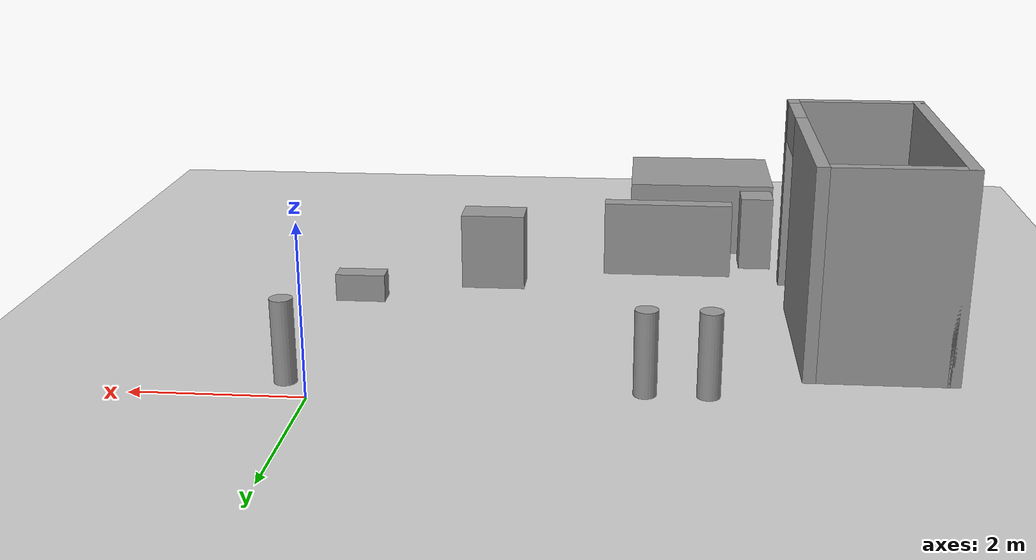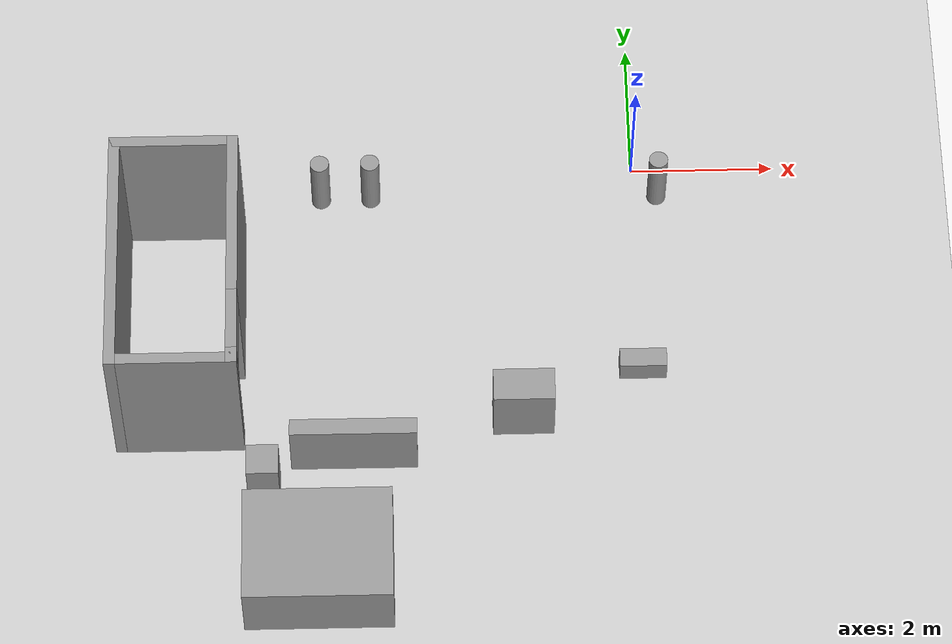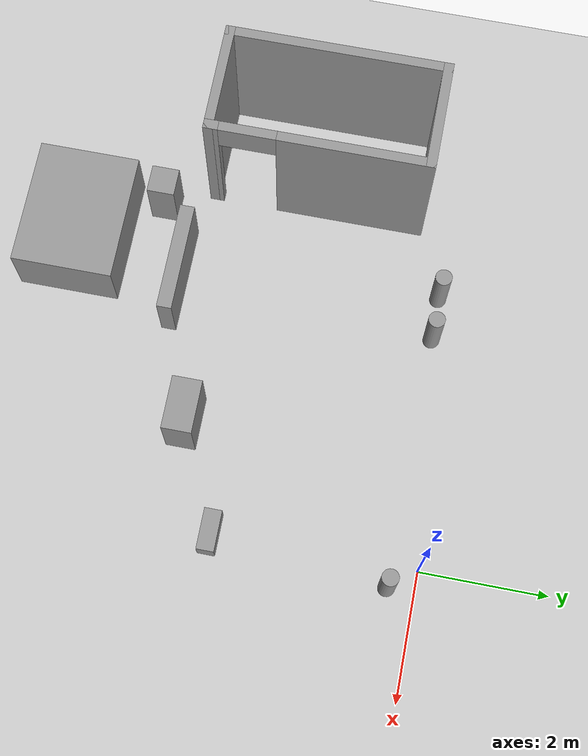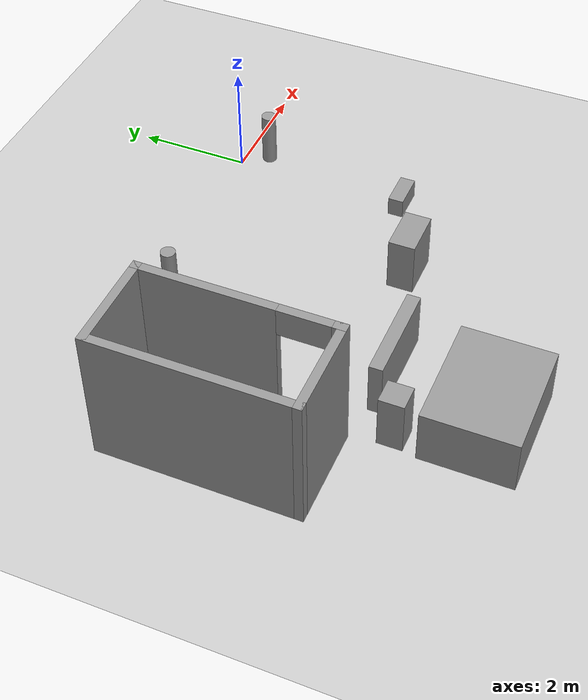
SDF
<sdf version="1.9">
 <world name="default">
  <model name="ground_plane">
   <static>true</static>
   <link name="link">
    <collision name="collision">
     <geometry><plane><normal>0 0 1</normal><size>100 100</size></plane></geometry>
     <surface><friction><ode><mu>100</mu><mu2>50</mu2></ode></friction></surface>
    </collision>
    <visual name="visual">
     <cast_shadows>false</cast_shadows>
     <geometry><plane><normal>0 0 1</normal><size>100 100</size></plane></geometry>
     <material>
      <script><uri>file://media/materials/scripts/gazebo.material</uri><name>Gazebo/Grey</name></script>
     </material>
    </visual>
   </link>
  </model>
  <model name="cma_varanda1">
   <pose>-6.3251799999999996 -2.5931299999999999 0 0 0 0</pose>
   <link name="Wall_0">
    <pose>0.80000000000000004 0 0 0 0 -1.5708</pose>
    <visual name="Wall_0_Visual_0">
     <pose>-0.55249999999999999 0 1.25 0 0 0</pose>
     <geometry><box><size>2.395 0.14999999999999999 2.5</size></box></geometry>
     <material>
      <script><uri>file://media/materials/scripts/gazebo.material</uri><name>Gazebo/Grey</name></script>
      <ambient>1 1 1 1</ambient>
     </material>
    </visual>
    <collision name="Wall_0_Collision_0">
     <geometry><box><size>2.395 0.14999999999999999 2.5</size></box></geometry>
     <pose>-0.55249999999999999 0 1.25 0 0 0</pose>
    </collision>
    <visual name="Wall_0_Visual_1">
     <pose>1.6375 0 1.25 0 0 0</pose>
     <geometry><box><size>0.22500000000000001 0.14999999999999999 2.5</size></box></geometry>
     <material>
      <script><uri>file://media/materials/scripts/gazebo.material</uri><name>Gazebo/Grey</name></script>
      <ambient>1 1 1 1</ambient>
     </material>
    </visual>
    <collision name="Wall_0_Collision_1">
     <geometry><box><size>0.22500000000000001 0.14999999999999999 2.5</size></box></geometry>
     <pose>1.6375 0 1.25 0 0 0</pose>
    </collision>
    <visual name="Wall_0_Visual_2">
     <pose>1.085 0 2.25 0 0 0</pose>
     <geometry><box><size>0.88 0.14999999999999999 0.5</size></box></geometry>
     <material>
      <script><uri>file://media/materials/scripts/gazebo.material</uri><name>Gazebo/Grey</name></script>
      <ambient>1 1 1 1</ambient>
     </material>
    </visual>
    <collision name="Wall_0_Collision_2">
     <geometry><box><size>0.88 0.14999999999999999 0.5</size></box></geometry>
     <pose>1.085 0 2.25 0 0 0</pose>
    </collision>
   </link>
   <link name="Wall_1">
    <collision name="Wall_1_Collision">
     <geometry><box><size>1.75 0.14999999999999999 2.5</size></box></geometry>
     <pose>0 0 1.25 0 0 0</pose>
    </collision>
    <visual name="Wall_1_Visual">
     <pose>0 0 1.25 0 0 0</pose>
     <geometry><box><size>1.75 0.14999999999999999 2.5</size></box></geometry>
     <material>
      <script><uri>file://media/materials/scripts/gazebo.material</uri><name>Gazebo/Grey</name></script>
      <ambient>1 1 1 1</ambient>
     </material>
    </visual>
    <pose>0 -1.675 0 0 0 3.1415899999999999</pose>
   </link>
   <link name="Wall_2">
    <collision name="Wall_2_Collision">
     <geometry><box><size>3.5 0.14999999999999999 2.5</size></box></geometry>
     <pose>0 0 1.25 0 0 0</pose>
    </collision>
    <visual name="Wall_2_Visual">
     <pose>0 0 1.25 0 0 0</pose>
     <geometry><box><size>3.5 0.14999999999999999 2.5</size></box></geometry>
     <material>
      <script><uri>file://media/materials/scripts/gazebo.material</uri><name>Gazebo/Grey</name></script>
      <ambient>1 1 1 1</ambient>
     </material>
    </visual>
    <pose>-0.80000000000000004 0 0 0 0 1.5708</pose>
   </link>
   <link name="Wall_3">
    <collision name="Wall_3_Collision">
     <geometry><box><size>1.75 0.14999999999999999 2.5</size></box></geometry>
     <pose>0 0 1.25 0 0 0</pose>
    </collision>
    <visual name="Wall_3_Visual">
     <pose>0 0 1.25 0 0 0</pose>
     <geometry><box><size>1.75 0.14999999999999999 2.5</size></box></geometry>
     <material>
      <script><uri>file://media/materials/scripts/gazebo.material</uri><name>Gazebo/Grey</name></script>
      <ambient>1 1 1 1</ambient>
     </material>
    </visual>
    <pose>0 1.675 0 0 0 0</pose>
   </link>
   <static>true</static>
  </model>
  <model name="cma_lixo">
   <link name="link_1">
    <pose>0.88296200000000002 1.81586 0.5 0 0 0</pose>
    <inertial>
     <mass>0.068764400000000003</mass>
     <inertia>
      <ixx>0.00602588</ixx>
      <ixy>0</ixy>
      <ixz>0</ixz>
      <iyy>0.00602588</iyy>
      <iyz>0</iyz>
      <izz>0.00059106800000000004</izz>
     </inertia>
    </inertial>
    <visual name="visual">
     <geometry><cylinder><radius>0.13111200000000001</radius><length>1</length></cylinder></geometry>
     <material>
      <lighting>true</lighting>
      <script><uri>file://media/materials/scripts/gazebo.material</uri><name>Gazebo/Grey</name></script>
      <ambient>0.300000012 0.300000012 0.300000012 1</ambient>
      <diffuse>0.699999988 0.699999988 0.699999988 1</diffuse>
      <specular>0.00999999978 0.00999999978 0.00999999978 1</specular>
      <emissive>0 0 0 1</emissive>
     </material>
    </visual>
    <collision name="collision">
     <geometry><cylinder><radius>0.13111200000000001</radius><length>1</length></cylinder></geometry>
     <surface>
      <friction>
       <ode><mu>1</mu><mu2>1</mu2><fdir1>0 0 0</fdir1><slip1>0</slip1><slip2>0</slip2></ode>
       <torsional>
        <coefficient>1</coefficient>
        <patch_radius>0</patch_radius>
        <surface_radius>0</surface_radius>
        <use_patch_radius>true</use_patch_radius>
        <ode><slip>0</slip></ode>
       </torsional>
      </friction>
      <bounce><restitution_coefficient>0</restitution_coefficient><threshold>1000000</threshold></bounce>
      <contact>
       <collide_without_contact>false</collide_without_contact>
       <collide_without_contact_bitmask>1</collide_without_contact_bitmask>
       <collide_bitmask>1</collide_bitmask>
       <ode>
        <soft_cfm>0</soft_cfm>
        <soft_erp>0.20000000000000001</soft_erp>
        <kp>10000000000000</kp>
        <kd>1</kd>
        <max_vel>0.01</max_vel>
        <min_depth>0</min_depth>
       </ode>
       <bullet>
        <split_impulse>true</split_impulse>
        <split_impulse_penetration_threshold>-0.01</split_impulse_penetration_threshold>
        <soft_cfm>0</soft_cfm>
        <soft_erp>0.20000000000000001</soft_erp>
        <kp>10000000000000</kp>
        <kd>1</kd>
       </bullet>
      </contact>
     </surface>
    </collision>
   </link>
   <static>false</static>
   <pose>-1.35785 -1.5254399999999999 -5.0000000000000004e-06 0 0 -0.54309700000000016</pose>
  </model>
  <model name="cma_armario_s">
   <link name="link_1">
    <pose>-1.9999999999999999e-06 -3.0000000000000001e-06 0 0 0 0</pose>
    <inertial>
     <mass>0.39015899999999998</mass>
     <inertia>
      <ixx>0.039647000000000002</ixx>
      <ixy>0</ixy>
      <ixz>0</ixz>
      <iyy>0.055070800000000003</iyy>
      <iyz>0</iyz>
      <izz>0.029691200000000001</izz>
     </inertia>
    </inertial>
    <visual name="visual">
     <geometry><box><size>0.83294199999999996 0.46839700000000001 1</size></box></geometry>
     <material>
      <lighting>true</lighting>
      <script><uri>file://media/materials/scripts/gazebo.material</uri><name>Gazebo/Grey</name></script>
      <ambient>0.300000012 0.300000012 0.300000012 1</ambient>
      <diffuse>0.699999988 0.699999988 0.699999988 1</diffuse>
      <specular>0.00999999978 0.00999999978 0.00999999978 1</specular>
      <emissive>0 0 0 1</emissive>
     </material>
    </visual>
    <collision name="collision">
     <geometry><box><size>0.83294199999999996 0.46839700000000001 1</size></box></geometry>
     <surface>
      <friction>
       <ode><mu>1</mu><mu2>1</mu2><fdir1>0 0 0</fdir1><slip1>0</slip1><slip2>0</slip2></ode>
       <torsional>
        <coefficient>1</coefficient>
        <patch_radius>0</patch_radius>
        <surface_radius>0</surface_radius>
        <use_patch_radius>true</use_patch_radius>
        <ode><slip>0</slip></ode>
       </torsional>
      </friction>
      <bounce><restitution_coefficient>0</restitution_coefficient><threshold>1000000</threshold></bounce>
      <contact>
       <collide_without_contact>false</collide_without_contact>
       <collide_without_contact_bitmask>1</collide_without_contact_bitmask>
       <collide_bitmask>1</collide_bitmask>
       <ode>
        <soft_cfm>0</soft_cfm>
        <soft_erp>0.20000000000000001</soft_erp>
        <kp>10000000000000</kp>
        <kd>1</kd>
        <max_vel>0.01</max_vel>
        <min_depth>0</min_depth>
       </ode>
       <bullet>
        <split_impulse>true</split_impulse>
        <split_impulse_penetration_threshold>-0.01</split_impulse_penetration_threshold>
        <soft_cfm>0</soft_cfm>
        <soft_erp>0.20000000000000001</soft_erp>
        <kp>10000000000000</kp>
        <kd>1</kd>
       </bullet>
      </contact>
     </surface>
    </collision>
   </link>
   <static>false</static>
   <pose>-1.6384000000000001 -3.9380099999999998 0.50000100000000003 6.0000000000000002e-06 0 0.00099299999999999996</pose>
  </model>
  <model name="cma_cama_c">
   <link name="link_0">
    <pose>5.0000000000000004e-06 -3.9999999999999998e-06 0 0 0 0</pose>
    <inertial>
     <mass>3.1835800000000001</mass>
     <inertia>
      <ixx>0.93486199999999997</ixx>
      <ixy>0</ixy>
      <ixz>0</ixz>
      <iyy>1.3306899999999999</iyy>
      <iyz>0</iyz>
      <izz>1.7349600000000001</izz>
     </inertia>
    </inertial>
    <visual name="visual">
     <geometry><box><size>2.0039400000000001 1.58866 1</size></box></geometry>
     <material>
      <lighting>true</lighting>
      <script><uri>file://media/materials/scripts/gazebo.material</uri><name>Gazebo/Grey</name></script>
      <ambient>0.300000012 0.300000012 0.300000012 1</ambient>
      <diffuse>0.699999988 0.699999988 0.699999988 1</diffuse>
      <specular>0.00999999978 0.00999999978 0.00999999978 1</specular>
      <emissive>0 0 0 1</emissive>
     </material>
    </visual>
    <collision name="collision">
     <geometry><box><size>2.0039400000000001 1.58866 1</size></box></geometry>
     <surface>
      <friction>
       <ode><mu>1</mu><mu2>1</mu2><fdir1>0 0 0</fdir1><slip1>0</slip1><slip2>0</slip2></ode>
       <torsional>
        <coefficient>1</coefficient>
        <patch_radius>0</patch_radius>
        <surface_radius>0</surface_radius>
        <use_patch_radius>true</use_patch_radius>
        <ode><slip>0</slip></ode>
       </torsional>
      </friction>
      <bounce><restitution_coefficient>0</restitution_coefficient><threshold>1000000</threshold></bounce>
      <contact>
       <collide_without_contact>false</collide_without_contact>
       <collide_without_contact_bitmask>1</collide_without_contact_bitmask>
       <collide_bitmask>1</collide_bitmask>
       <ode>
        <soft_cfm>0</soft_cfm>
        <soft_erp>0.20000000000000001</soft_erp>
        <kp>10000000000000</kp>
        <kd>1</kd>
        <max_vel>0.01</max_vel>
        <min_depth>0</min_depth>
       </ode>
       <bullet>
        <split_impulse>true</split_impulse>
        <split_impulse_penetration_threshold>-0.01</split_impulse_penetration_threshold>
        <soft_cfm>0</soft_cfm>
        <soft_erp>0.20000000000000001</soft_erp>
        <kp>10000000000000</kp>
        <kd>1</kd>
       </bullet>
      </contact>
     </surface>
    </collision>
   </link>
   <static>false</static>
   <pose>-4.43933 -6.2481600000000004 0.5 0 0 0</pose>
  </model>
  <model name="cma_armario_0">
   <link name="link_0">
    <pose>1.3215699999999999 0.88517800000000002 0.5 0 0 0</pose>
    <inertial>
     <mass>0.40237600000000001</mass>
     <inertia>
      <ixx>0.0353686</ixx>
      <ixy>0</ixy>
      <ixz>0</ixz>
      <iyy>0.13261600000000001</iyy>
      <iyz>0</iyz>
      <izz>0.100922</izz>
     </inertia>
    </inertial>
    <visual name="visual">
     <geometry><box><size>1.7187699999999999 0.234069 1</size></box></geometry>
     <material>
      <lighting>true</lighting>
      <script><uri>file://media/materials/scripts/gazebo.material</uri><name>Gazebo/Grey</name></script>
      <ambient>0.300000012 0.300000012 0.300000012 1</ambient>
      <diffuse>0.699999988 0.699999988 0.699999988 1</diffuse>
      <specular>0.00999999978 0.00999999978 0.00999999978 1</specular>
      <emissive>0 0 0 1</emissive>
     </material>
    </visual>
    <collision name="collision">
     <geometry><box><size>1.7187699999999999 0.234069 1</size></box></geometry>
     <surface>
      <friction>
       <ode><mu>1</mu><mu2>1</mu2><fdir1>0 0 0</fdir1><slip1>0</slip1><slip2>0</slip2></ode>
       <torsional>
        <coefficient>1</coefficient>
        <patch_radius>0</patch_radius>
        <surface_radius>0</surface_radius>
        <use_patch_radius>true</use_patch_radius>
        <ode><slip>0</slip></ode>
       </torsional>
      </friction>
      <bounce><restitution_coefficient>0</restitution_coefficient><threshold>1000000</threshold></bounce>
      <contact>
       <collide_without_contact>false</collide_without_contact>
       <collide_without_contact_bitmask>1</collide_without_contact_bitmask>
       <collide_bitmask>1</collide_bitmask>
       <ode>
        <soft_cfm>0</soft_cfm>
        <soft_erp>0.20000000000000001</soft_erp>
        <kp>10000000000000</kp>
        <kd>1</kd>
        <max_vel>0.01</max_vel>
        <min_depth>0</min_depth>
       </ode>
       <bullet>
        <split_impulse>true</split_impulse>
        <split_impulse_penetration_threshold>-0.01</split_impulse_penetration_threshold>
        <soft_cfm>0</soft_cfm>
        <soft_erp>0.20000000000000001</soft_erp>
        <kp>10000000000000</kp>
        <kd>1</kd>
       </bullet>
      </contact>
     </surface>
    </collision>
   </link>
   <static>false</static>
   <pose>-5.2782999999999998 -5.41812 0 0 0 -0.0022300000000000006</pose>
  </model>
  <model name="cma_gaveteiro_pequeno_1">
   <link name="link_0">
    <pose>0.25617400000000001 1.2505500000000001 0.5 0 0 0</pose>
    <inertial>
     <mass>0.18718599999999999</mass>
     <inertia>
      <ixx>0.018509999999999999</ixx>
      <ixy>0</ixy>
      <ixz>0</ixz>
      <iyy>0.018527600000000002</iyy>
      <iyz>0</iyz>
      <izz>0.00583981</izz>
     </inertia>
    </inertial>
    <visual name="visual">
     <geometry><box><size>0.43331700000000001 0.432002 1</size></box></geometry>
     <material>
      <lighting>true</lighting>
      <script><uri>file://media/materials/scripts/gazebo.material</uri><name>Gazebo/Grey</name></script>
      <ambient>0.300000012 0.300000012 0.300000012 1</ambient>
      <diffuse>0.699999988 0.699999988 0.699999988 1</diffuse>
      <specular>0.00999999978 0.00999999978 0.00999999978 1</specular>
      <emissive>0 0 0 1</emissive>
     </material>
    </visual>
    <collision name="collision">
     <geometry><box><size>0.43331700000000001 0.432002 1</size></box></geometry>
     <surface>
      <friction>
       <ode><mu>1</mu><mu2>1</mu2><fdir1>0 0 0</fdir1><slip1>0</slip1><slip2>0</slip2></ode>
       <torsional>
        <coefficient>1</coefficient>
        <patch_radius>0</patch_radius>
        <surface_radius>0</surface_radius>
        <use_patch_radius>true</use_patch_radius>
        <ode><slip>0</slip></ode>
       </torsional>
      </friction>
      <bounce><restitution_coefficient>0</restitution_coefficient><threshold>1000000</threshold></bounce>
      <contact>
       <collide_without_contact>false</collide_without_contact>
       <collide_without_contact_bitmask>1</collide_without_contact_bitmask>
       <collide_bitmask>1</collide_bitmask>
       <ode>
        <soft_cfm>0</soft_cfm>
        <soft_erp>0.20000000000000001</soft_erp>
        <kp>10000000000000</kp>
        <kd>1</kd>
        <max_vel>0.01</max_vel>
        <min_depth>0</min_depth>
       </ode>
       <bullet>
        <split_impulse>true</split_impulse>
        <split_impulse_penetration_threshold>-0.01</split_impulse_penetration_threshold>
        <soft_cfm>0</soft_cfm>
        <soft_erp>0.20000000000000001</soft_erp>
        <kp>10000000000000</kp>
        <kd>1</kd>
       </bullet>
      </contact>
     </surface>
    </collision>
   </link>
   <static>false</static>
   <pose>-5.4309599999999998 -6.2550699999999999 7.9999999999999996e-06 -8.0000000000000013e-06 0 -2.4000000000000001e-05</pose>
  </model>
  <model name="cma_lixo_2">
   <link name="link_1">
    <pose>0.88296200000000002 1.81586 0.5 0 0 0</pose>
    <inertial>
     <mass>0.068764400000000003</mass>
     <inertia>
      <ixx>0.00602588</ixx>
      <ixy>0</ixy>
      <ixz>0</ixz>
      <iyy>0.00602588</iyy>
      <iyz>0</iyz>
      <izz>0.00059106800000000004</izz>
     </inertia>
    </inertial>
    <visual name="visual">
     <geometry><cylinder><radius>0.13111200000000001</radius><length>1</length></cylinder></geometry>
     <material>
      <lighting>true</lighting>
      <script><uri>file://media/materials/scripts/gazebo.material</uri><name>Gazebo/Grey</name></script>
      <ambient>0.300000012 0.300000012 0.300000012 1</ambient>
      <diffuse>0.699999988 0.699999988 0.699999988 1</diffuse>
      <specular>0.00999999978 0.00999999978 0.00999999978 1</specular>
      <emissive>0 0 0 1</emissive>
     </material>
    </visual>
    <collision name="collision">
     <geometry><cylinder><radius>0.13111200000000001</radius><length>1</length></cylinder></geometry>
     <surface>
      <friction>
       <ode><mu>1</mu><mu2>1</mu2><fdir1>0 0 0</fdir1><slip1>0</slip1><slip2>0</slip2></ode>
       <torsional>
        <coefficient>1</coefficient>
        <patch_radius>0</patch_radius>
        <surface_radius>0</surface_radius>
        <use_patch_radius>true</use_patch_radius>
        <ode><slip>0</slip></ode>
       </torsional>
      </friction>
      <bounce><restitution_coefficient>0</restitution_coefficient><threshold>1000000</threshold></bounce>
      <contact>
       <collide_without_contact>false</collide_without_contact>
       <collide_without_contact_bitmask>1</collide_without_contact_bitmask>
       <collide_bitmask>1</collide_bitmask>
       <ode>
        <soft_cfm>0</soft_cfm>
        <soft_erp>0.20000000000000001</soft_erp>
        <kp>10000000000000</kp>
        <kd>1</kd>
        <max_vel>0.01</max_vel>
        <min_depth>0</min_depth>
       </ode>
       <bullet>
        <split_impulse>true</split_impulse>
        <split_impulse_penetration_threshold>-0.01</split_impulse_penetration_threshold>
        <soft_cfm>0</soft_cfm>
        <soft_erp>0.20000000000000001</soft_erp>
        <kp>10000000000000</kp>
        <kd>1</kd>
       </bullet>
      </contact>
     </surface>
    </collision>
   </link>
   <static>false</static>
   <pose>-5.2734199999999998 -2.2134499999999999 -9.9999999999999995e-07 0 0 0</pose>
  </model>
  <model name="cma_lixo_3">
   <link name="link_1">
    <pose>0.88296200000000002 1.81586 0.5 0 0 0</pose>
    <inertial>
     <mass>0.068764400000000003</mass>
     <inertia>
      <ixx>0.00602588</ixx>
      <ixy>0</ixy>
      <ixz>0</ixz>
      <iyy>0.00602588</iyy>
      <iyz>0</iyz>
      <izz>0.00059106800000000004</izz>
     </inertia>
    </inertial>
    <visual name="visual">
     <geometry><cylinder><radius>0.13111200000000001</radius><length>1</length></cylinder></geometry>
     <material>
      <lighting>true</lighting>
      <script><uri>file://media/materials/scripts/gazebo.material</uri><name>Gazebo/Grey</name></script>
      <ambient>0.300000012 0.300000012 0.300000012 1</ambient>
      <diffuse>0.699999988 0.699999988 0.699999988 1</diffuse>
      <specular>0.00999999978 0.00999999978 0.00999999978 1</specular>
      <emissive>0 0 0 1</emissive>
     </material>
    </visual>
    <collision name="collision">
     <geometry><cylinder><radius>0.13111200000000001</radius><length>1</length></cylinder></geometry>
     <surface>
      <friction>
       <ode><mu>1</mu><mu2>1</mu2><fdir1>0 0 0</fdir1><slip1>0</slip1><slip2>0</slip2></ode>
       <torsional>
        <coefficient>1</coefficient>
        <patch_radius>0</patch_radius>
        <surface_radius>0</surface_radius>
        <use_patch_radius>true</use_patch_radius>
        <ode><slip>0</slip></ode>
       </torsional>
      </friction>
      <bounce><restitution_coefficient>0</restitution_coefficient><threshold>1000000</threshold></bounce>
      <contact>
       <collide_without_contact>false</collide_without_contact>
       <collide_without_contact_bitmask>1</collide_without_contact_bitmask>
       <collide_bitmask>1</collide_bitmask>
       <ode>
        <soft_cfm>0</soft_cfm>
        <soft_erp>0.20000000000000001</soft_erp>
        <kp>10000000000000</kp>
        <kd>1</kd>
        <max_vel>0.01</max_vel>
        <min_depth>0</min_depth>
       </ode>
       <bullet>
        <split_impulse>true</split_impulse>
        <split_impulse_penetration_threshold>-0.01</split_impulse_penetration_threshold>
        <soft_cfm>0</soft_cfm>
        <soft_erp>0.20000000000000001</soft_erp>
        <kp>10000000000000</kp>
        <kd>1</kd>
       </bullet>
      </contact>
     </surface>
    </collision>
   </link>
   <static>false</static>
   <pose>-4.5749500000000003 -2.2090000000000001 -9.9999999999999995e-07 0 0 0</pose>
  </model>
  <model name="cma_barra_70cm">
   <link name="link_2">
    <pose>3.3538399999999999 1.20238 0.5 0 0 0</pose>
    <inertial>
     <mass>0.063136800000000007</mass>
     <inertia>
      <ixx>0.0010654200000000001</ixx>
      <ixy>0</ixy>
      <ixz>0</ixz>
      <iyy>0.0028472699999999998</iyy>
      <iyz>0</iyz>
      <izz>0.0025815</izz>
     </inertia>
    </inertial>
    <visual name="visual">
     <geometry><box><size>0.64393800000000001 0.27572799999999997 0.35573700000000003</size></box></geometry>
     <material>
      <lighting>true</lighting>
      <script><uri>file://media/materials/scripts/gazebo.material</uri><name>Gazebo/Grey</name></script>
      <ambient>0.300000012 0.300000012 0.300000012 1</ambient>
      <diffuse>0.699999988 0.699999988 0.699999988 1</diffuse>
      <specular>0.00999999978 0.00999999978 0.00999999978 1</specular>
      <emissive>0 0 0 1</emissive>
     </material>
    </visual>
    <collision name="collision">
     <geometry><box><size>0.64393800000000001 0.27572799999999997 0.35573700000000003</size></box></geometry>
     <surface>
      <friction>
       <ode><mu>1</mu><mu2>1</mu2><fdir1>0 0 0</fdir1><slip1>0</slip1><slip2>0</slip2></ode>
       <torsional>
        <coefficient>1</coefficient>
        <patch_radius>0</patch_radius>
        <surface_radius>0</surface_radius>
        <use_patch_radius>true</use_patch_radius>
        <ode><slip>0</slip></ode>
       </torsional>
      </friction>
      <bounce><restitution_coefficient>0</restitution_coefficient><threshold>1000000</threshold></bounce>
      <contact>
       <collide_without_contact>false</collide_without_contact>
       <collide_without_contact_bitmask>1</collide_without_contact_bitmask>
       <collide_bitmask>1</collide_bitmask>
       <ode>
        <soft_cfm>0</soft_cfm>
        <soft_erp>0.20000000000000001</soft_erp>
        <kp>10000000000000</kp>
        <kd>1</kd>
        <max_vel>0.01</max_vel>
        <min_depth>0</min_depth>
       </ode>
       <bullet>
        <split_impulse>true</split_impulse>
        <split_impulse_penetration_threshold>-0.01</split_impulse_penetration_threshold>
        <soft_cfm>0</soft_cfm>
        <soft_erp>0.20000000000000001</soft_erp>
        <kp>10000000000000</kp>
        <kd>1</kd>
       </bullet>
      </contact>
     </surface>
    </collision>
   </link>
   <static>false</static>
   <pose>-3.3247200000000001 -4.4044499999999998 -0.322102 -2.7000000000000002e-05 8.2718061255302767e-25 -0.00027900000000000001</pose>
  </model>
 </world>
</sdf>
